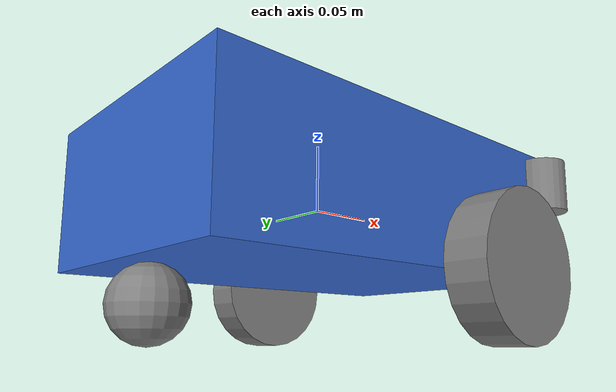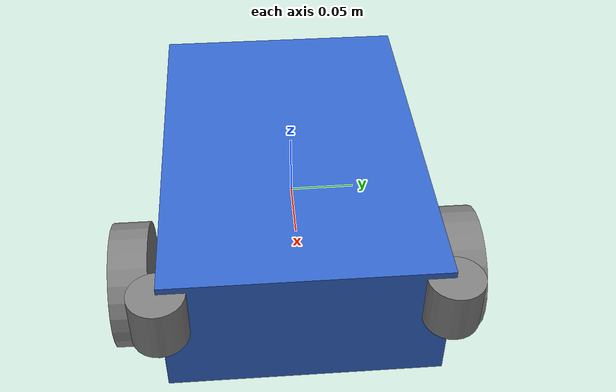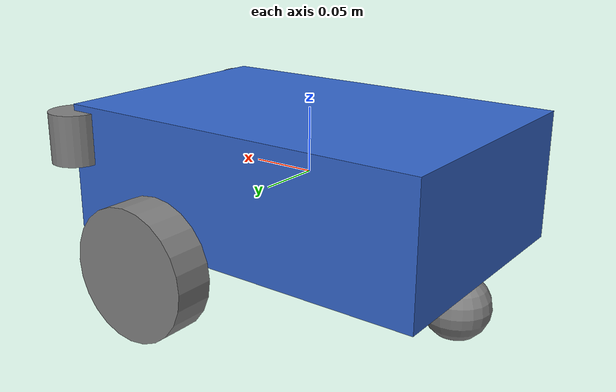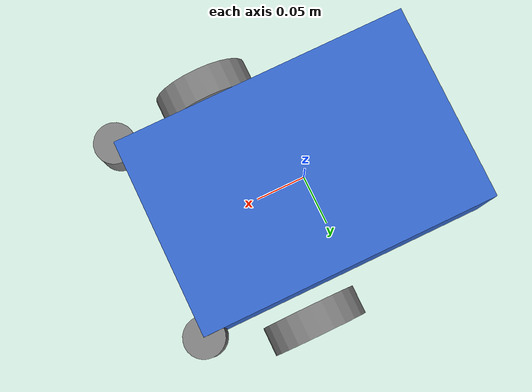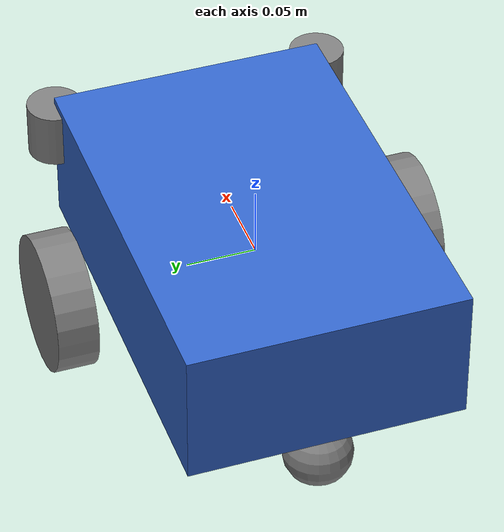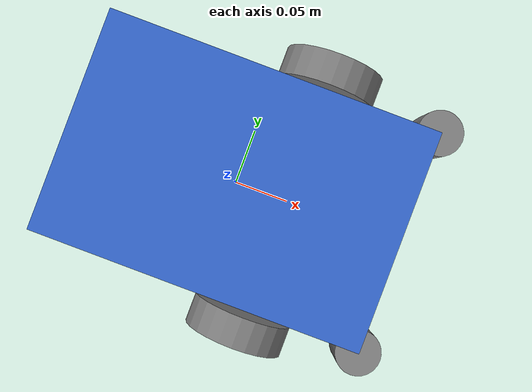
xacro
<?xml version="1.0"?>
<robot name="my_robot" xmlns:xacro="http://ros.org/wiki/xacro">

  <xacro:include filename="$(find my_robot_description)/urdf/robot.gazebo"/>

  <!-- ===== Materials ===== -->
  <material name="blue">
    <color rgba="0.2 0.4 0.8 1.0"/>
  </material>
  <material name="grey">
    <color rgba="0.5 0.5 0.5 1.0"/>
  </material>

  <!-- ===== Chassis ===== -->
  <!-- Box: 0.30 m (x) × 0.20 m (y) × 0.10 m (z), mass 5 kg             -->
  <!-- Inertia: Ixx=m(y²+z²)/12  Iyy=m(x²+z²)/12  Izz=m(x²+y²)/12      -->
  <link name="base_link">
    <visual>
      <geometry>
        <box size="0.30 0.20 0.10"/>
      </geometry>
      <material name="blue"/>
    </visual>
    <collision>
      <geometry>
        <box size="0.30 0.20 0.10"/>
      </geometry>
    </collision>
    <inertial>
      <mass value="5.0"/>
      <inertia ixx="0.02083" ixy="0.0" ixz="0.0"
                              iyy="0.04167" iyz="0.0"
                                            izz="0.05417"/>
    </inertial>
  </link>

  <!-- ===== Left wheel ===== -->
  <!-- Cylinder: r=0.05 m, l=0.03 m, mass 0.5 kg                         -->
  <!-- Joint rotated -π/2 around X so cylinder axis (local Z) → world Y  -->
  <!-- Inertia: Ixx=Iyy=m(3r²+l²)/12  Izz=mr²/2                         -->
  <joint name="left_wheel_joint" type="continuous">
    <parent link="base_link"/>
    <child link="left_wheel_link"/>
    <origin xyz="0.05 0.13 -0.05" rpy="-1.5708 0.0 0.0"/>
    <axis xyz="0 0 1"/>
    <dynamics damping="0.1" friction="0.1"/>
  </joint>

  <link name="left_wheel_link">
    <visual>
      <geometry>
        <cylinder radius="0.05" length="0.03"/>
      </geometry>
      <material name="grey"/>
    </visual>
    <collision>
      <geometry>
        <cylinder radius="0.05" length="0.03"/>
      </geometry>
    </collision>
    <inertial>
      <mass value="0.5"/>
      <inertia ixx="0.00035" ixy="0.0" ixz="0.0"
                              iyy="0.00035" iyz="0.0"
                                            izz="0.000625"/>
    </inertial>
  </link>

  <!-- ===== Right wheel ===== -->
  <joint name="right_wheel_joint" type="continuous">
    <parent link="base_link"/>
    <child link="right_wheel_link"/>
    <origin xyz="0.05 -0.13 -0.05" rpy="-1.5708 0.0 0.0"/>
    <axis xyz="0 0 1"/>
    <dynamics damping="0.1" friction="0.1"/>
  </joint>

  <link name="right_wheel_link">
    <visual>
      <geometry>
        <cylinder radius="0.05" length="0.03"/>
      </geometry>
      <material name="grey"/>
    </visual>
    <collision>
      <geometry>
        <cylinder radius="0.05" length="0.03"/>
      </geometry>
    </collision>
    <inertial>
      <mass value="0.5"/>
      <inertia ixx="0.00035" ixy="0.0" ixz="0.0"
                              iyy="0.00035" iyz="0.0"
                                            izz="0.000625"/>
    </inertial>
  </link>

  <!-- ===== Caster ===== -->
  <!-- Sphere: r=0.025 m, mass 0.1 kg                                     -->
  <!-- base_link is at body centre = 0.10 m above ground                  -->
  <!-- caster centre at 0.025 m above ground → z = 0.025 - 0.10 = -0.075 -->
  <!-- Inertia: I=2mr²/5                                                  -->
  <joint name="caster_joint" type="fixed">
    <parent link="base_link"/>
    <child link="caster_link"/>
    <origin xyz="-0.13 0.0 -0.075" rpy="0.0 0.0 0.0"/>
  </joint>

  <link name="caster_link">
    <visual>
      <geometry>
        <sphere radius="0.025"/>
      </geometry>
      <material name="grey"/>
    </visual>
    <collision>
      <geometry>
        <sphere radius="0.025"/>
      </geometry>
    </collision>
    <inertial>
      <mass value="0.1"/>
      <inertia ixx="0.000025" ixy="0.0" ixz="0.0"
                               iyy="0.000025" iyz="0.0"
                                             izz="0.000025"/>
    </inertial>
  </link>

  <!-- ===== LiDAR links (twin front-corner) ===== -->
  <!-- Two small planar scanners at the front corners (good front+side view).  -->
  <!-- Scan plane world z=0.125: ABOVE the wheel tops (0.10) so rays miss the   -->
  <!-- wheels, and BELOW the arm shoulder (0.15) so the arm never enters the    -->
  <!-- scan. r=0.02 (small). Residual chassis self-hits are dropped by the      -->
  <!-- footprint filter in scan_fusion_node, leaving a clean cloud.             -->
  <!-- (< block top 0.40, so blocks are still seen.)                           -->
  <xacro:macro name="lidar_link" params="name">
    <link name="${name}">
      <visual>
        <geometry><cylinder radius="0.02" length="0.04"/></geometry>
        <material name="grey"/>
      </visual>
      <collision>
        <geometry><cylinder radius="0.02" length="0.04"/></geometry>
      </collision>
      <inertial>
        <mass value="0.05"/>
        <inertia ixx="0.00001" ixy="0.0" ixz="0.0"
                                iyy="0.00001" iyz="0.0"
                                              izz="0.00001"/>
      </inertial>
    </link>
  </xacro:macro>

  <xacro:lidar_link name="lidar_left_link"/>
  <xacro:lidar_link name="lidar_right_link"/>

  <joint name="lidar_left_joint" type="fixed">
    <parent link="base_link"/>
    <child link="lidar_left_link"/>
    <origin xyz="0.15 0.10 0.025" rpy="0 0 0"/>
  </joint>
  <joint name="lidar_right_joint" type="fixed">
    <parent link="base_link"/>
    <child link="lidar_right_link"/>
    <origin xyz="0.15 -0.10 0.025" rpy="0 0 0"/>
  </joint>

</robot>
